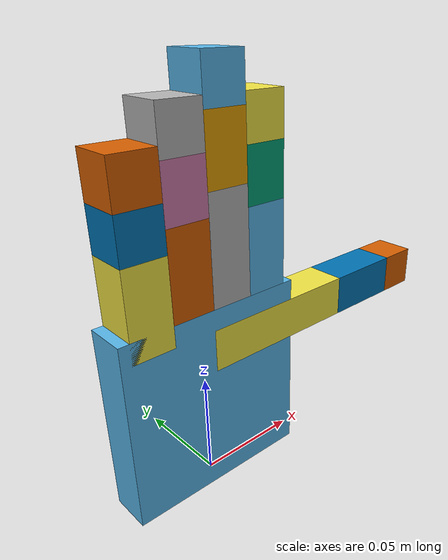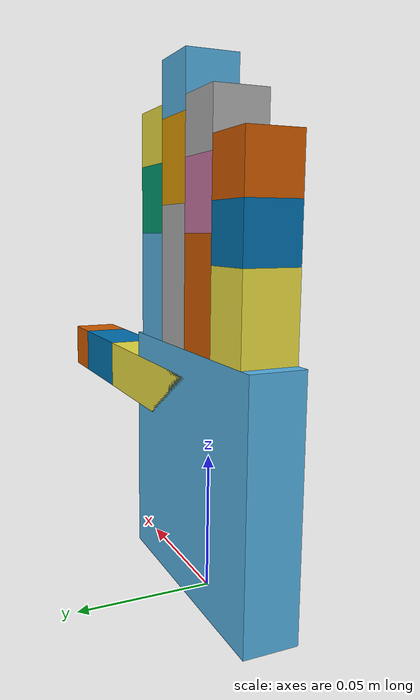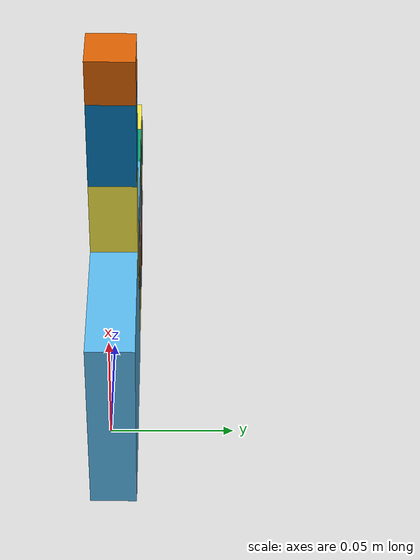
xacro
<?xml version="1.0"?>
<robot xmlns:xacro="http://www.ros.org/wiki/xacro" name="right_hand">
    <xacro:property name="thumb_diameter" value="0.02" />
    <xacro:property name="palm_size" value="0.09" />

<!-- finger_name = human/index -->
<!-- parent_link = human/right_palm -->
<!-- finger_diameter = 0.02 -->
<!-- meta_x = 0.03 -->
<!-- meta_y = 0.09 -->
<!-- prox_len = 0.04 -->
<!-- middle_len = 0.025 -->
<!-- distal_len = 0.02 -->

    <xacro:macro name="human_finger" params="finger_name parent_link finger_diameter meta_x meta_z prox_len middle_len distal_len piv_amplitude flex_amplitude">
        <link name="${finger_name}_meta"/>
        <link name="${finger_name}_proximal_0"/>
        <link name="${finger_name}_proximal_1">
            <visual>
                <origin rpy="0 0 0" xyz="0 0 ${prox_len/2}"/>
                <geometry>
                    <box size="${finger_diameter} ${finger_diameter} ${prox_len}"/>
                </geometry>
            </visual>
        </link>
        <link name="${finger_name}_middle">
            <visual>
                <origin rpy="0 0 0" xyz="0 0 ${middle_len/2}"/>
                <geometry>
                    <box size="${finger_diameter} ${finger_diameter} ${middle_len}"/>
                </geometry>
            </visual>
        </link>
        <link name="${finger_name}_distal">
            <visual>
                <origin rpy="0 0 0" xyz="0 0 ${distal_len/2}"/>
                <geometry>
                    <box size="${finger_diameter} ${finger_diameter} ${distal_len}"/>
                </geometry>
            </visual>
        </link>
        <link name="${finger_name}_tip"/>

        <joint name="${finger_name}_palm_meta" type="fixed">
            <origin rpy="0 0 0" xyz="${meta_x} 0 ${meta_z}"/>
            <parent link="${parent_link}"/>
            <child link="${finger_name}_meta"/>
        </joint>

        <joint name="${finger_name}_meta_abdu" type="revolute">
            <origin rpy="0 0 0" xyz="0 0 0"/>
            <axis xyz="0 -1 0"/>
            <parent link="${finger_name}_meta"/>
            <child link="${finger_name}_proximal_0"/>
            <limit effort="1" lower="-${piv_amplitude}" upper="${piv_amplitude}" velocity="1"/>
        </joint>

        <joint name="${finger_name}_meta_flex" type="revolute">
            <origin rpy="0 0 0" xyz="0 0 0"/>
            <axis xyz="1 0 0"/>
            <parent link="${finger_name}_proximal_0"/>
            <child link="${finger_name}_proximal_1"/>
            <limit effort="1" lower="0" upper="${flex_amplitude}" velocity="1"/>
        </joint>

        <joint name="${finger_name}_proximal_flex" type="revolute">
            <origin rpy="0 0 0" xyz="0 0 ${prox_len}"/>
            <axis xyz="1 0 0"/>
            <parent link="${finger_name}_proximal_1"/>
            <child link="${finger_name}_middle"/>
            <limit effort="1" lower="0" upper="${flex_amplitude}" velocity="1"/>
        </joint>

        <joint name="${finger_name}_middle_flex" type="revolute">
            <origin rpy="0 0 0" xyz="0 0 ${middle_len}"/>
            <axis xyz="1 0 0"/>
            <parent link="${finger_name}_middle"/>
            <child link="${finger_name}_distal"/>
            <limit effort="1" lower="0" upper="${flex_amplitude}" velocity="1"/>
        </joint>

        <joint name="${finger_name}_tip_joint" type="fixed">
            <origin rpy="0 0 0" xyz="0 0 ${distal_len}"/>
            <parent link="${finger_name}_distal"/>
            <child link="${finger_name}_tip"/>
        </joint>
    </xacro:macro>

    <link name="human/right_hand_mount"/>
    <link name="human/right_palm">
        <visual>
            <origin rpy="0 0 0" xyz="0 0 ${palm_size/2}"/>
            <geometry>
                <box size="${palm_size} ${thumb_diameter} ${palm_size}"/>
            </geometry>
        </visual>
    </link>

    <link name="human/right_hand_thumb_meta_0"/>
    <link name="human/right_hand_thumb_meta_1">
        <visual>
            <origin rpy="0 0 0" xyz="0.04 0 0"/>
            <geometry>
                <box size="0.08 ${thumb_diameter} ${thumb_diameter}"/>
            </geometry>
        </visual>
    </link>
    <link name="human/right_hand_thumb_prox">
        <visual>
            <origin rpy="0 0 0" xyz="${thumb_diameter} 0 0"/>
            <geometry>
                <box size="0.04 ${thumb_diameter} ${thumb_diameter}"/>
            </geometry>
        </visual>
    </link>
    <link name="human/right_hand_thumb_distal">
        <visual>
            <origin rpy="0 0 0" xyz="0.01 0 0"/>
            <geometry>
                <box size="0.02 ${thumb_diameter} ${thumb_diameter}"/>
            </geometry>
        </visual>
    </link>

    <link name="human/right_hand_thumb_tip"/>

    <!-- Joints -->
    <joint name="right_hand_mount2palm" type="fixed">
        <origin rpy="0 0 0" xyz="0 0 0"/>
        <parent link="human/right_hand_mount"/>
        <child link="human/right_palm"/>
    </joint>
    <!-- Thumb -->

    <joint name="right_hand/thumb_meta_abdu" type="revolute">
        <origin rpy="0 0 0" xyz="0 0 0"/>
        <axis xyz="0 -1 0"/>
        <parent link="human/right_palm"/>
        <child link="human/right_hand_thumb_meta_0"/>
        <limit effort="1" lower="0" upper="${pi/2}" velocity="1"/>
    </joint>

    <joint name="right_hand/thumb_meta_flex" type="revolute">
        <origin rpy="0 0 0" xyz="0 0 0.07"/>
        <axis xyz="0 0 -1"/>
        <parent link="human/right_hand_thumb_meta_0"/>
        <child link="human/right_hand_thumb_meta_1"/>
        <limit effort="1" lower="0" upper="${pi/2}" velocity="1"/>
    </joint>

    <joint name="right_hand/thumb_proximal_flex" type="revolute">
        <origin rpy="0 0 0" xyz="0.08 0 0"/>
        <axis xyz="0 -1 0"/>
        <parent link="human/right_hand_thumb_meta_1"/>
        <child link="human/right_hand_thumb_prox"/>
        <limit effort="1" lower="0" upper="${pi/2}" velocity="1"/>
    </joint>

    <joint name="right_hand/thumb_distal_flex" type="revolute">
        <origin rpy="0 0 0" xyz="0.04 0 0"/>
        <axis xyz="0 -1 0"/>
        <parent link="human/right_hand_thumb_prox"/>
        <child link="human/right_hand_thumb_distal"/>
        <limit effort="1" lower="0" upper="${pi/2}" velocity="1"/>
    </joint>

    <joint name="right_thumb_tip_joint" type="fixed">
        <origin rpy="0 0 0" xyz="0.02 0 0"/>
        <parent link="human/right_hand_thumb_distal"/>
        <child link="human/right_hand_thumb_tip"/>
    </joint>

<!-- finger_name = human/index -->
<!-- parent_link = human/right_palm -->
<!-- finger_diameter = 0.02 -->
<!-- meta_x = 0.03 -->
<!-- meta_y = 0.09 -->
<!-- prox_len = 0.04 -->
<!-- middle_len = 0.025 -->
<!-- distal_len = 0.02 -->

    <xacro:human_finger finger_name="right_hand/index" parent_link="human/right_palm" finger_diameter="0.02" meta_x="0.03" meta_z="0.09" prox_len="0.04" middle_len="0.025" distal_len="0.02" piv_amplitude="${pi/4}" flex_amplitude="${pi/2}"/>
    <xacro:human_finger finger_name="right_hand/middle" parent_link="human/right_palm" finger_diameter="0.02" meta_x="0.01" meta_z="0.09" prox_len="0.05" middle_len="0.03" distal_len="0.02" piv_amplitude="${pi/4}" flex_amplitude="${pi/2}"/>
    <xacro:human_finger finger_name="right_hand/ring" parent_link="human/right_palm" finger_diameter="0.02" meta_x="-0.01" meta_z="0.09" prox_len="0.04" middle_len="0.025" distal_len="0.02" piv_amplitude="${pi/4}" flex_amplitude="${pi/2}"/>
    <xacro:human_finger finger_name="right_hand/pinky" parent_link="human/right_palm" finger_diameter="0.02" meta_x="-0.03" meta_z="0.08" prox_len="0.04" middle_len="0.02" distal_len="0.02" piv_amplitude="${pi/4}" flex_amplitude="${pi/2}"/>
</robot>
